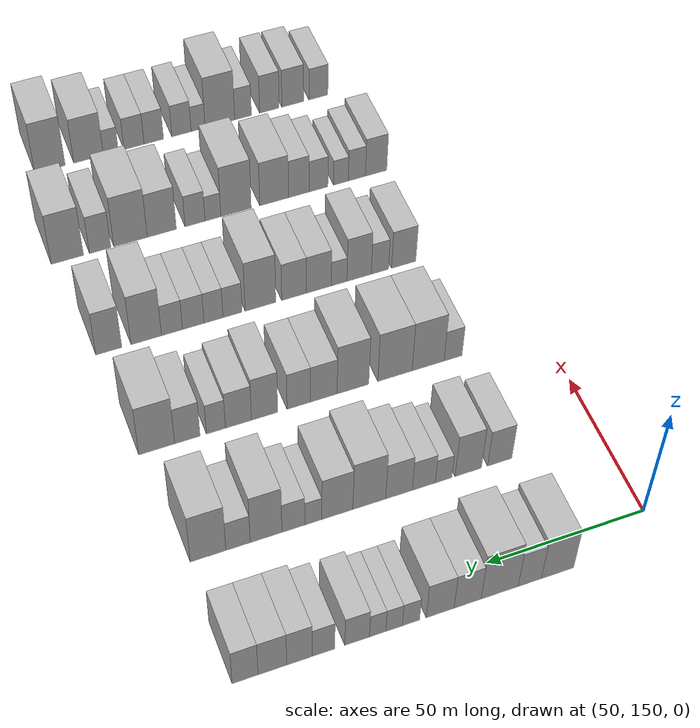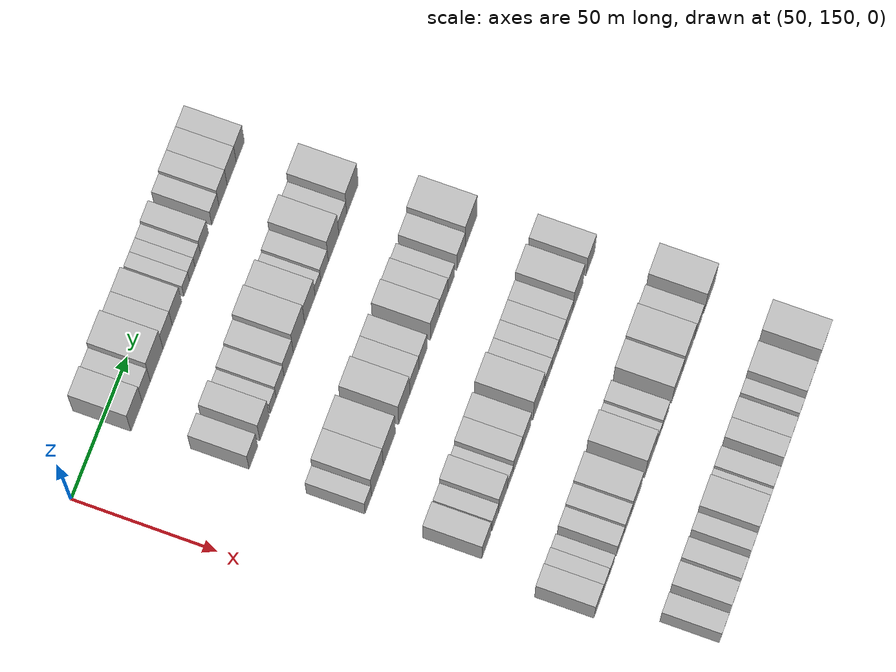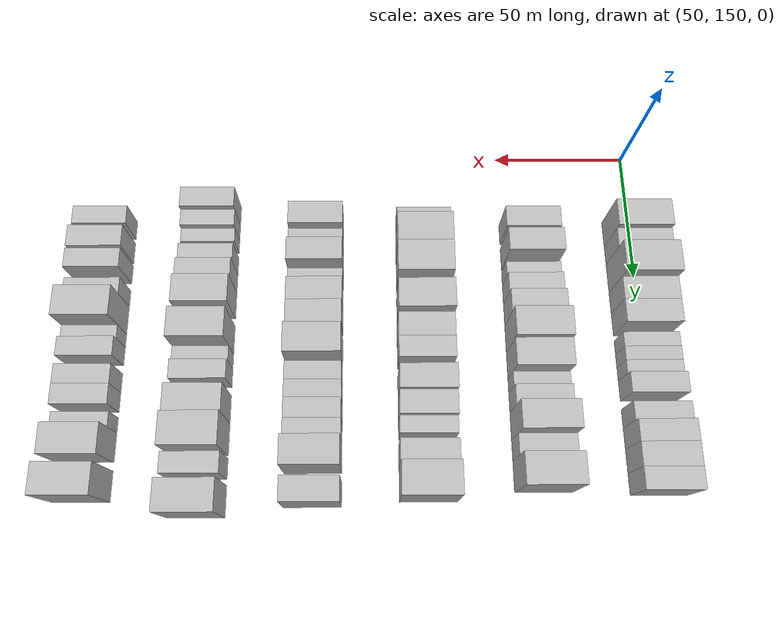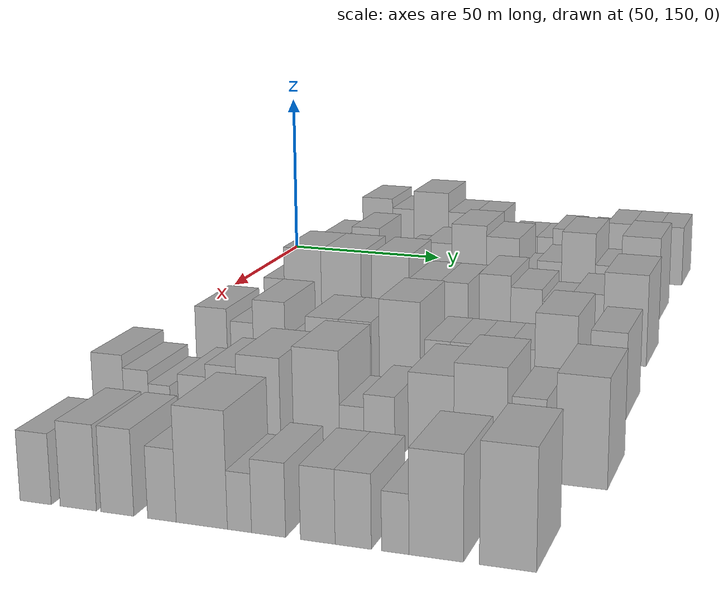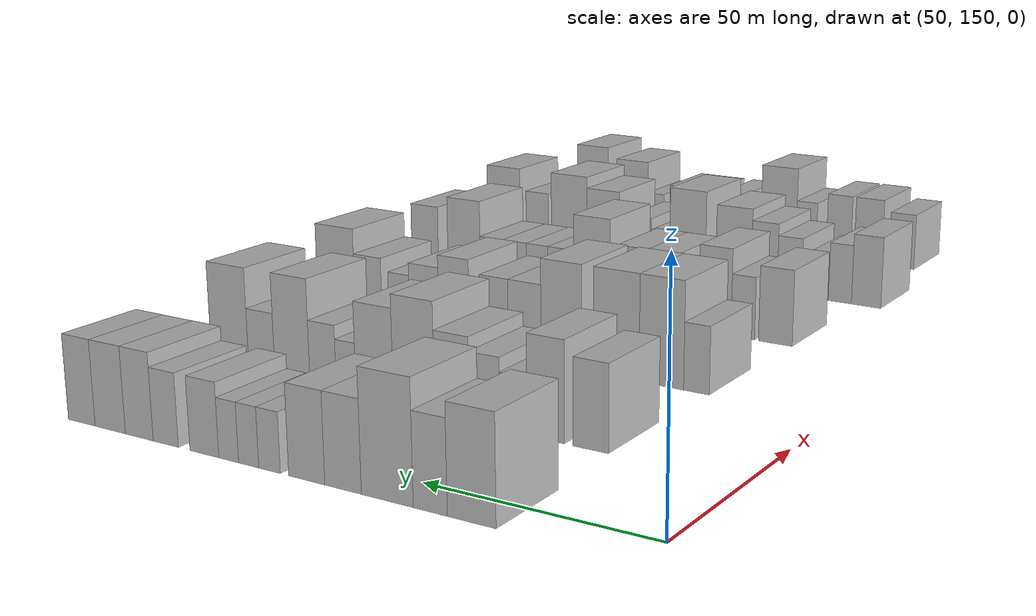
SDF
<sdf version="1.6">
 <world name="default">
  <model name="building_86">
   <static>1</static>
   <pose>50.0000 182.4433 0 0.000000 0.000000 0.000000</pose>
   <link name="link">
    <pose>0 0 10.50 0 0 0</pose>
    <collision name="collision"><geometry><box><size>20.0000 10.1318 21.0000</size></box></geometry></collision>
    <visual name="visual">
     <cast_shadows>0</cast_shadows>
     <geometry><box><size>20.0000 10.1318 21.0000</size></box></geometry>
     <material>
      <script>
       <uri>model://HANNAS_wall/materials/scripts</uri>
       <uri>model://HANNAS_wall/materials/textures</uri>
       <name>vrc/HANNAS_wall</name>
      </script>
     </material>
    </visual>
   </link>
  </model>
  <model name="building_87">
   <static>1</static>
   <pose>50.0000 191.1486 0 0.000000 0.000000 0.000000</pose>
   <link name="link">
    <pose>0 0 9.00 0 0 0</pose>
    <collision name="collision"><geometry><box><size>20.0000 7.2789 18.0000</size></box></geometry></collision>
    <visual name="visual">
     <cast_shadows>0</cast_shadows>
     <geometry><box><size>20.0000 7.2789 18.0000</size></box></geometry>
     <material>
      <script>
       <uri>model://HANNAS_wall/materials/scripts</uri>
       <uri>model://HANNAS_wall/materials/textures</uri>
       <name>vrc/HANNAS_wall</name>
      </script>
     </material>
    </visual>
   </link>
  </model>
  <model name="building_88">
   <static>1</static>
   <pose>50.0000 200.5249 0 0.000000 0.000000 0.000000</pose>
   <link name="link">
    <pose>0 0 12.00 0 0 0</pose>
    <collision name="collision"><geometry><box><size>20.0000 11.4737 24.0000</size></box></geometry></collision>
    <visual name="visual">
     <cast_shadows>0</cast_shadows>
     <geometry><box><size>20.0000 11.4737 24.0000</size></box></geometry>
     <material>
      <script>
       <uri>model://HANNAS_wall/materials/scripts</uri>
       <uri>model://HANNAS_wall/materials/textures</uri>
       <name>vrc/HANNAS_wall</name>
      </script>
     </material>
    </visual>
   </link>
  </model>
  <model name="building_89">
   <static>1</static>
   <pose>50.0000 210.4406 0 0.000000 0.000000 0.000000</pose>
   <link name="link">
    <pose>0 0 9.00 0 0 0</pose>
    <collision name="collision"><geometry><box><size>20.0000 8.3578 18.0000</size></box></geometry></collision>
    <visual name="visual">
     <cast_shadows>0</cast_shadows>
     <geometry><box><size>20.0000 8.3578 18.0000</size></box></geometry>
     <material>
      <script>
       <uri>model://HANNAS_wall/materials/scripts</uri>
       <uri>model://HANNAS_wall/materials/textures</uri>
       <name>vrc/HANNAS_wall</name>
      </script>
     </material>
    </visual>
   </link>
  </model>
  <model name="building_90">
   <static>1</static>
   <pose>50.0000 218.8700 0 0.000000 0.000000 0.000000</pose>
   <link name="link">
    <pose>0 0 9.00 0 0 0</pose>
    <collision name="collision"><geometry><box><size>20.0000 8.5010 18.0000</size></box></geometry></collision>
    <visual name="visual">
     <cast_shadows>0</cast_shadows>
     <geometry><box><size>20.0000 8.5010 18.0000</size></box></geometry>
     <material>
      <script>
       <uri>model://HANNAS_wall/materials/scripts</uri>
       <uri>model://HANNAS_wall/materials/textures</uri>
       <name>vrc/HANNAS_wall</name>
      </script>
     </material>
    </visual>
   </link>
  </model>
  <model name="building_91">
   <static>1</static>
   <pose>50.0000 227.7440 0 0.000000 0.000000 0.000000</pose>
   <link name="link">
    <pose>0 0 6.00 0 0 0</pose>
    <collision name="collision"><geometry><box><size>20.0000 5.2469 12.0000</size></box></geometry></collision>
    <visual name="visual">
     <cast_shadows>0</cast_shadows>
     <geometry><box><size>20.0000 5.2469 12.0000</size></box></geometry>
     <material>
      <script>
       <uri>model://HANNAS_wall/materials/scripts</uri>
       <uri>model://HANNAS_wall/materials/textures</uri>
       <name>vrc/HANNAS_wall</name>
      </script>
     </material>
    </visual>
   </link>
  </model>
  <model name="building_92">
   <static>1</static>
   <pose>50.0000 232.8507 0 0.000000 0.000000 0.000000</pose>
   <link name="link">
    <pose>0 0 6.00 0 0 0</pose>
    <collision name="collision"><geometry><box><size>20.0000 4.9665 12.0000</size></box></geometry></collision>
    <visual name="visual">
     <cast_shadows>0</cast_shadows>
     <geometry><box><size>20.0000 4.9665 12.0000</size></box></geometry>
     <material>
      <script>
       <uri>model://HANNAS_wall/materials/scripts</uri>
       <uri>model://HANNAS_wall/materials/textures</uri>
       <name>vrc/HANNAS_wall</name>
      </script>
     </material>
    </visual>
   </link>
  </model>
  <model name="building_93">
   <static>1</static>
   <pose>50.0000 237.8128 0 0.000000 0.000000 0.000000</pose>
   <link name="link">
    <pose>0 0 6.00 0 0 0</pose>
    <collision name="collision"><geometry><box><size>20.0000 4.9579 12.0000</size></box></geometry></collision>
    <visual name="visual">
     <cast_shadows>0</cast_shadows>
     <geometry><box><size>20.0000 4.9579 12.0000</size></box></geometry>
     <material>
      <script>
       <uri>model://HANNAS_wall/materials/scripts</uri>
       <uri>model://HANNAS_wall/materials/textures</uri>
       <name>vrc/HANNAS_wall</name>
      </script>
     </material>
    </visual>
   </link>
  </model>
  <model name="building_94">
   <static>1</static>
   <pose>50.0000 243.9733 0 0.000000 0.000000 0.000000</pose>
   <link name="link">
    <pose>0 0 7.50 0 0 0</pose>
    <collision name="collision"><geometry><box><size>20.0000 7.3631 15.0000</size></box></geometry></collision>
    <visual name="visual">
     <cast_shadows>0</cast_shadows>
     <geometry><box><size>20.0000 7.3631 15.0000</size></box></geometry>
     <material>
      <script>
       <uri>model://HANNAS_wall/materials/scripts</uri>
       <uri>model://HANNAS_wall/materials/textures</uri>
       <name>vrc/HANNAS_wall</name>
      </script>
     </material>
    </visual>
   </link>
  </model>
  <model name="building_95">
   <static>1</static>
   <pose>50.0000 253.9811 0 0.000000 0.000000 0.000000</pose>
   <link name="link">
    <pose>0 0 7.50 0 0 0</pose>
    <collision name="collision"><geometry><box><size>20.0000 6.6525 15.0000</size></box></geometry></collision>
    <visual name="visual">
     <cast_shadows>0</cast_shadows>
     <geometry><box><size>20.0000 6.6525 15.0000</size></box></geometry>
     <material>
      <script>
       <uri>model://HANNAS_wall/materials/scripts</uri>
       <uri>model://HANNAS_wall/materials/textures</uri>
       <name>vrc/HANNAS_wall</name>
      </script>
     </material>
    </visual>
   </link>
  </model>
  <model name="building_96">
   <static>1</static>
   <pose>50.0000 261.0674 0 0.000000 0.000000 0.000000</pose>
   <link name="link">
    <pose>0 0 9.00 0 0 0</pose>
    <collision name="collision"><geometry><box><size>20.0000 7.5202 18.0000</size></box></geometry></collision>
    <visual name="visual">
     <cast_shadows>0</cast_shadows>
     <geometry><box><size>20.0000 7.5202 18.0000</size></box></geometry>
     <material>
      <script>
       <uri>model://HANNAS_wall/materials/scripts</uri>
       <uri>model://HANNAS_wall/materials/textures</uri>
       <name>vrc/HANNAS_wall</name>
      </script>
     </material>
    </visual>
   </link>
  </model>
  <model name="building_97">
   <static>1</static>
   <pose>50.0000 269.0079 0 0.000000 0.000000 0.000000</pose>
   <link name="link">
    <pose>0 0 9.00 0 0 0</pose>
    <collision name="collision"><geometry><box><size>20.0000 8.3607 18.0000</size></box></geometry></collision>
    <visual name="visual">
     <cast_shadows>0</cast_shadows>
     <geometry><box><size>20.0000 8.3607 18.0000</size></box></geometry>
     <material>
      <script>
       <uri>model://HANNAS_wall/materials/scripts</uri>
       <uri>model://HANNAS_wall/materials/textures</uri>
       <name>vrc/HANNAS_wall</name>
      </script>
     </material>
    </visual>
   </link>
  </model>
  <model name="building_98">
   <static>1</static>
   <pose>50.0000 276.9610 0 0.000000 0.000000 0.000000</pose>
   <link name="link">
    <pose>0 0 9.00 0 0 0</pose>
    <collision name="collision"><geometry><box><size>20.0000 7.5457 18.0000</size></box></geometry></collision>
    <visual name="visual">
     <cast_shadows>0</cast_shadows>
     <geometry><box><size>20.0000 7.5457 18.0000</size></box></geometry>
     <material>
      <script>
       <uri>model://HANNAS_wall/materials/scripts</uri>
       <uri>model://HANNAS_wall/materials/textures</uri>
       <name>vrc/HANNAS_wall</name>
      </script>
     </material>
    </visual>
   </link>
  </model>
  <model name="building_223">
   <static>1</static>
   <pose>90.0000 182.5931 0 0.000000 0.000000 0.000000</pose>
   <link name="link">
    <pose>0 0 9.00 0 0 0</pose>
    <collision name="collision"><geometry><box><size>20.0000 7.8951 18.0000</size></box></geometry></collision>
    <visual name="visual">
     <cast_shadows>0</cast_shadows>
     <geometry><box><size>20.0000 7.8951 18.0000</size></box></geometry>
     <material>
      <script>
       <uri>model://HANNAS_wall/materials/scripts</uri>
       <uri>model://HANNAS_wall/materials/textures</uri>
       <name>vrc/HANNAS_wall</name>
      </script>
     </material>
    </visual>
   </link>
  </model>
  <model name="building_224">
   <static>1</static>
   <pose>90.0000 192.8180 0 0.000000 0.000000 0.000000</pose>
   <link name="link">
    <pose>0 0 10.50 0 0 0</pose>
    <collision name="collision"><geometry><box><size>20.0000 8.5547 21.0000</size></box></geometry></collision>
    <visual name="visual">
     <cast_shadows>0</cast_shadows>
     <geometry><box><size>20.0000 8.5547 21.0000</size></box></geometry>
     <material>
      <script>
       <uri>model://HANNAS_wall/materials/scripts</uri>
       <uri>model://HANNAS_wall/materials/textures</uri>
       <name>vrc/HANNAS_wall</name>
      </script>
     </material>
    </visual>
   </link>
  </model>
  <model name="building_225">
   <static>1</static>
   <pose>90.0000 200.7677 0 0.000000 0.000000 0.000000</pose>
   <link name="link">
    <pose>0 0 6.00 0 0 0</pose>
    <collision name="collision"><geometry><box><size>20.0000 5.3447 12.0000</size></box></geometry></collision>
    <visual name="visual">
     <cast_shadows>0</cast_shadows>
     <geometry><box><size>20.0000 5.3447 12.0000</size></box></geometry>
     <material>
      <script>
       <uri>model://HANNAS_wall/materials/scripts</uri>
       <uri>model://HANNAS_wall/materials/textures</uri>
       <name>vrc/HANNAS_wall</name>
      </script>
     </material>
    </visual>
   </link>
  </model>
  <model name="building_226">
   <static>1</static>
   <pose>90.0000 207.1180 0 0.000000 0.000000 0.000000</pose>
   <link name="link">
    <pose>0 0 7.50 0 0 0</pose>
    <collision name="collision"><geometry><box><size>20.0000 7.3559 15.0000</size></box></geometry></collision>
    <visual name="visual">
     <cast_shadows>0</cast_shadows>
     <geometry><box><size>20.0000 7.3559 15.0000</size></box></geometry>
     <material>
      <script>
       <uri>model://HANNAS_wall/materials/scripts</uri>
       <uri>model://HANNAS_wall/materials/textures</uri>
       <name>vrc/HANNAS_wall</name>
      </script>
     </material>
    </visual>
   </link>
  </model>
  <model name="building_227">
   <static>1</static>
   <pose>90.0000 215.0343 0 0.000000 0.000000 0.000000</pose>
   <link name="link">
    <pose>0 0 9.00 0 0 0</pose>
    <collision name="collision"><geometry><box><size>20.0000 8.4767 18.0000</size></box></geometry></collision>
    <visual name="visual">
     <cast_shadows>0</cast_shadows>
     <geometry><box><size>20.0000 8.4767 18.0000</size></box></geometry>
     <material>
      <script>
       <uri>model://HANNAS_wall/materials/scripts</uri>
       <uri>model://HANNAS_wall/materials/textures</uri>
       <name>vrc/HANNAS_wall</name>
      </script>
     </material>
    </visual>
   </link>
  </model>
  <model name="building_228">
   <static>1</static>
   <pose>90.0000 224.4790 0 0.000000 0.000000 0.000000</pose>
   <link name="link">
    <pose>0 0 12.00 0 0 0</pose>
    <collision name="collision"><geometry><box><size>20.0000 10.4127 24.0000</size></box></geometry></collision>
    <visual name="visual">
     <cast_shadows>0</cast_shadows>
     <geometry><box><size>20.0000 10.4127 24.0000</size></box></geometry>
     <material>
      <script>
       <uri>model://HANNAS_wall/materials/scripts</uri>
       <uri>model://HANNAS_wall/materials/textures</uri>
       <name>vrc/HANNAS_wall</name>
      </script>
     </material>
    </visual>
   </link>
  </model>
  <model name="building_229">
   <static>1</static>
   <pose>90.0000 234.5520 0 0.000000 0.000000 0.000000</pose>
   <link name="link">
    <pose>0 0 10.50 0 0 0</pose>
    <collision name="collision"><geometry><box><size>20.0000 9.7332 21.0000</size></box></geometry></collision>
    <visual name="visual">
     <cast_shadows>0</cast_shadows>
     <geometry><box><size>20.0000 9.7332 21.0000</size></box></geometry>
     <material>
      <script>
       <uri>model://HANNAS_wall/materials/scripts</uri>
       <uri>model://HANNAS_wall/materials/textures</uri>
       <name>vrc/HANNAS_wall</name>
      </script>
     </material>
    </visual>
   </link>
  </model>
  <model name="building_230">
   <static>1</static>
   <pose>90.0000 242.0365 0 0.000000 0.000000 0.000000</pose>
   <link name="link">
    <pose>0 0 6.00 0 0 0</pose>
    <collision name="collision"><geometry><box><size>20.0000 5.2359 12.0000</size></box></geometry></collision>
    <visual name="visual">
     <cast_shadows>0</cast_shadows>
     <geometry><box><size>20.0000 5.2359 12.0000</size></box></geometry>
     <material>
      <script>
       <uri>model://HANNAS_wall/materials/scripts</uri>
       <uri>model://HANNAS_wall/materials/textures</uri>
       <name>vrc/HANNAS_wall</name>
      </script>
     </material>
    </visual>
   </link>
  </model>
  <model name="building_231">
   <static>1</static>
   <pose>90.0000 248.2085 0 0.000000 0.000000 0.000000</pose>
   <link name="link">
    <pose>0 0 7.50 0 0 0</pose>
    <collision name="collision"><geometry><box><size>20.0000 7.1080 15.0000</size></box></geometry></collision>
    <visual name="visual">
     <cast_shadows>0</cast_shadows>
     <geometry><box><size>20.0000 7.1080 15.0000</size></box></geometry>
     <material>
      <script>
       <uri>model://HANNAS_wall/materials/scripts</uri>
       <uri>model://HANNAS_wall/materials/textures</uri>
       <name>vrc/HANNAS_wall</name>
      </script>
     </material>
    </visual>
   </link>
  </model>
  <model name="building_232">
   <static>1</static>
   <pose>90.0000 256.6211 0 0.000000 0.000000 0.000000</pose>
   <link name="link">
    <pose>0 0 12.00 0 0 0</pose>
    <collision name="collision"><geometry><box><size>20.0000 9.7174 24.0000</size></box></geometry></collision>
    <visual name="visual">
     <cast_shadows>0</cast_shadows>
     <geometry><box><size>20.0000 9.7174 24.0000</size></box></geometry>
     <material>
      <script>
       <uri>model://HANNAS_wall/materials/scripts</uri>
       <uri>model://HANNAS_wall/materials/textures</uri>
       <name>vrc/HANNAS_wall</name>
      </script>
     </material>
    </visual>
   </link>
  </model>
  <model name="building_233">
   <static>1</static>
   <pose>90.0000 265.1922 0 0.000000 0.000000 0.000000</pose>
   <link name="link">
    <pose>0 0 7.50 0 0 0</pose>
    <collision name="collision"><geometry><box><size>20.0000 7.4247 15.0000</size></box></geometry></collision>
    <visual name="visual">
     <cast_shadows>0</cast_shadows>
     <geometry><box><size>20.0000 7.4247 15.0000</size></box></geometry>
     <material>
      <script>
       <uri>model://HANNAS_wall/materials/scripts</uri>
       <uri>model://HANNAS_wall/materials/textures</uri>
       <name>vrc/HANNAS_wall</name>
      </script>
     </material>
    </visual>
   </link>
  </model>
  <model name="building_234">
   <static>1</static>
   <pose>90.0000 274.3124 0 0.000000 0.000000 0.000000</pose>
   <link name="link">
    <pose>0 0 12.00 0 0 0</pose>
    <collision name="collision"><geometry><box><size>20.0000 10.8158 24.0000</size></box></geometry></collision>
    <visual name="visual">
     <cast_shadows>0</cast_shadows>
     <geometry><box><size>20.0000 10.8158 24.0000</size></box></geometry>
     <material>
      <script>
       <uri>model://HANNAS_wall/materials/scripts</uri>
       <uri>model://HANNAS_wall/materials/textures</uri>
       <name>vrc/HANNAS_wall</name>
      </script>
     </material>
    </visual>
   </link>
  </model>
  <model name="building_361">
   <static>1</static>
   <pose>130.0000 180.5458 0 0.000000 0.000000 0.000000</pose>
   <link name="link">
    <pose>0 0 7.50 0 0 0</pose>
    <collision name="collision"><geometry><box><size>20.0000 6.0500 15.0000</size></box></geometry></collision>
    <visual name="visual">
     <cast_shadows>0</cast_shadows>
     <geometry><box><size>20.0000 6.0500 15.0000</size></box></geometry>
     <material>
      <script>
       <uri>model://HANNAS_wall/materials/scripts</uri>
       <uri>model://HANNAS_wall/materials/textures</uri>
       <name>vrc/HANNAS_wall</name>
      </script>
     </material>
    </visual>
   </link>
  </model>
  <model name="building_362">
   <static>1</static>
   <pose>130.0000 188.9560 0 0.000000 0.000000 0.000000</pose>
   <link name="link">
    <pose>0 0 12.00 0 0 0</pose>
    <collision name="collision"><geometry><box><size>20.0000 10.7705 24.0000</size></box></geometry></collision>
    <visual name="visual">
     <cast_shadows>0</cast_shadows>
     <geometry><box><size>20.0000 10.7705 24.0000</size></box></geometry>
     <material>
      <script>
       <uri>model://HANNAS_wall/materials/scripts</uri>
       <uri>model://HANNAS_wall/materials/textures</uri>
       <name>vrc/HANNAS_wall</name>
      </script>
     </material>
    </visual>
   </link>
  </model>
  <model name="building_363">
   <static>1</static>
   <pose>130.0000 200.0593 0 0.000000 0.000000 0.000000</pose>
   <link name="link">
    <pose>0 0 12.00 0 0 0</pose>
    <collision name="collision"><geometry><box><size>20.0000 11.4361 24.0000</size></box></geometry></collision>
    <visual name="visual">
     <cast_shadows>0</cast_shadows>
     <geometry><box><size>20.0000 11.4361 24.0000</size></box></geometry>
     <material>
      <script>
       <uri>model://HANNAS_wall/materials/scripts</uri>
       <uri>model://HANNAS_wall/materials/textures</uri>
       <name>vrc/HANNAS_wall</name>
      </script>
     </material>
    </visual>
   </link>
  </model>
  <model name="building_364">
   <static>1</static>
   <pose>130.0000 214.0159 0 0.000000 0.000000 0.000000</pose>
   <link name="link">
    <pose>0 0 12.00 0 0 0</pose>
    <collision name="collision"><geometry><box><size>20.0000 10.4771 24.0000</size></box></geometry></collision>
    <visual name="visual">
     <cast_shadows>0</cast_shadows>
     <geometry><box><size>20.0000 10.4771 24.0000</size></box></geometry>
     <material>
      <script>
       <uri>model://HANNAS_wall/materials/scripts</uri>
       <uri>model://HANNAS_wall/materials/textures</uri>
       <name>vrc/HANNAS_wall</name>
      </script>
     </material>
    </visual>
   </link>
  </model>
  <model name="building_365">
   <static>1</static>
   <pose>130.0000 223.5973 0 0.000000 0.000000 0.000000</pose>
   <link name="link">
    <pose>0 0 9.00 0 0 0</pose>
    <collision name="collision"><geometry><box><size>20.0000 8.6857 18.0000</size></box></geometry></collision>
    <visual name="visual">
     <cast_shadows>0</cast_shadows>
     <geometry><box><size>20.0000 8.6857 18.0000</size></box></geometry>
     <material>
      <script>
       <uri>model://HANNAS_wall/materials/scripts</uri>
       <uri>model://HANNAS_wall/materials/textures</uri>
       <name>vrc/HANNAS_wall</name>
      </script>
     </material>
    </visual>
   </link>
  </model>
  <model name="building_366">
   <static>1</static>
   <pose>130.0000 231.7675 0 0.000000 0.000000 0.000000</pose>
   <link name="link">
    <pose>0 0 9.00 0 0 0</pose>
    <collision name="collision"><geometry><box><size>20.0000 7.6547 18.0000</size></box></geometry></collision>
    <visual name="visual">
     <cast_shadows>0</cast_shadows>
     <geometry><box><size>20.0000 7.6547 18.0000</size></box></geometry>
     <material>
      <script>
       <uri>model://HANNAS_wall/materials/scripts</uri>
       <uri>model://HANNAS_wall/materials/textures</uri>
       <name>vrc/HANNAS_wall</name>
      </script>
     </material>
    </visual>
   </link>
  </model>
  <model name="building_367">
   <static>1</static>
   <pose>130.0000 242.8274 0 0.000000 0.000000 0.000000</pose>
   <link name="link">
    <pose>0 0 10.50 0 0 0</pose>
    <collision name="collision"><geometry><box><size>20.0000 8.4653 21.0000</size></box></geometry></collision>
    <visual name="visual">
     <cast_shadows>0</cast_shadows>
     <geometry><box><size>20.0000 8.4653 21.0000</size></box></geometry>
     <material>
      <script>
       <uri>model://HANNAS_wall/materials/scripts</uri>
       <uri>model://HANNAS_wall/materials/textures</uri>
       <name>vrc/HANNAS_wall</name>
      </script>
     </material>
    </visual>
   </link>
  </model>
  <model name="building_368">
   <static>1</static>
   <pose>130.0000 251.2444 0 0.000000 0.000000 0.000000</pose>
   <link name="link">
    <pose>0 0 9.00 0 0 0</pose>
    <collision name="collision"><geometry><box><size>20.0000 8.3687 18.0000</size></box></geometry></collision>
    <visual name="visual">
     <cast_shadows>0</cast_shadows>
     <geometry><box><size>20.0000 8.3687 18.0000</size></box></geometry>
     <material>
      <script>
       <uri>model://HANNAS_wall/materials/scripts</uri>
       <uri>model://HANNAS_wall/materials/textures</uri>
       <name>vrc/HANNAS_wall</name>
      </script>
     </material>
    </visual>
   </link>
  </model>
  <model name="building_369">
   <static>1</static>
   <pose>130.0000 258.4541 0 0.000000 0.000000 0.000000</pose>
   <link name="link">
    <pose>0 0 7.50 0 0 0</pose>
    <collision name="collision"><geometry><box><size>20.0000 6.0506 15.0000</size></box></geometry></collision>
    <visual name="visual">
     <cast_shadows>0</cast_shadows>
     <geometry><box><size>20.0000 6.0506 15.0000</size></box></geometry>
     <material>
      <script>
       <uri>model://HANNAS_wall/materials/scripts</uri>
       <uri>model://HANNAS_wall/materials/textures</uri>
       <name>vrc/HANNAS_wall</name>
      </script>
     </material>
    </visual>
   </link>
  </model>
  <model name="building_370">
   <static>1</static>
   <pose>130.0000 267.5005 0 0.000000 0.000000 0.000000</pose>
   <link name="link">
    <pose>0 0 9.00 0 0 0</pose>
    <collision name="collision"><geometry><box><size>20.0000 8.0422 18.0000</size></box></geometry></collision>
    <visual name="visual">
     <cast_shadows>0</cast_shadows>
     <geometry><box><size>20.0000 8.0422 18.0000</size></box></geometry>
     <material>
      <script>
       <uri>model://HANNAS_wall/materials/scripts</uri>
       <uri>model://HANNAS_wall/materials/textures</uri>
       <name>vrc/HANNAS_wall</name>
      </script>
     </material>
    </visual>
   </link>
  </model>
  <model name="building_371">
   <static>1</static>
   <pose>130.0000 277.1722 0 0.000000 0.000000 0.000000</pose>
   <link name="link">
    <pose>0 0 12.00 0 0 0</pose>
    <collision name="collision"><geometry><box><size>20.0000 11.3013 24.0000</size></box></geometry></collision>
    <visual name="visual">
     <cast_shadows>0</cast_shadows>
     <geometry><box><size>20.0000 11.3013 24.0000</size></box></geometry>
     <material>
      <script>
       <uri>model://HANNAS_wall/materials/scripts</uri>
       <uri>model://HANNAS_wall/materials/textures</uri>
       <name>vrc/HANNAS_wall</name>
      </script>
     </material>
    </visual>
   </link>
  </model>
  <model name="building_491">
   <static>1</static>
   <pose>170.0000 180.7721 0 0.000000 0.000000 0.000000</pose>
   <link name="link">
    <pose>0 0 9.00 0 0 0</pose>
    <collision name="collision"><geometry><box><size>20.0000 8.5006 18.0000</size></box></geometry></collision>
    <visual name="visual">
     <cast_shadows>0</cast_shadows>
     <geometry><box><size>20.0000 8.5006 18.0000</size></box></geometry>
     <material>
      <script>
       <uri>model://HANNAS_wall/materials/scripts</uri>
       <uri>model://HANNAS_wall/materials/textures</uri>
       <name>vrc/HANNAS_wall</name>
      </script>
     </material>
    </visual>
   </link>
  </model>
  <model name="building_492">
   <static>1</static>
   <pose>170.0000 189.0486 0 0.000000 0.000000 0.000000</pose>
   <link name="link">
    <pose>0 0 7.50 0 0 0</pose>
    <collision name="collision"><geometry><box><size>20.0000 6.0523 15.0000</size></box></geometry></collision>
    <visual name="visual">
     <cast_shadows>0</cast_shadows>
     <geometry><box><size>20.0000 6.0523 15.0000</size></box></geometry>
     <material>
      <script>
       <uri>model://HANNAS_wall/materials/scripts</uri>
       <uri>model://HANNAS_wall/materials/textures</uri>
       <name>vrc/HANNAS_wall</name>
      </script>
     </material>
    </visual>
   </link>
  </model>
  <model name="building_493">
   <static>1</static>
   <pose>170.0000 196.3042 0 0.000000 0.000000 0.000000</pose>
   <link name="link">
    <pose>0 0 10.50 0 0 0</pose>
    <collision name="collision"><geometry><box><size>20.0000 8.4591 21.0000</size></box></geometry></collision>
    <visual name="visual">
     <cast_shadows>0</cast_shadows>
     <geometry><box><size>20.0000 8.4591 21.0000</size></box></geometry>
     <material>
      <script>
       <uri>model://HANNAS_wall/materials/scripts</uri>
       <uri>model://HANNAS_wall/materials/textures</uri>
       <name>vrc/HANNAS_wall</name>
      </script>
     </material>
    </visual>
   </link>
  </model>
  <model name="building_494">
   <static>1</static>
   <pose>170.0000 203.2286 0 0.000000 0.000000 0.000000</pose>
   <link name="link">
    <pose>0 0 6.00 0 0 0</pose>
    <collision name="collision"><geometry><box><size>20.0000 5.3897 12.0000</size></box></geometry></collision>
    <visual name="visual">
     <cast_shadows>0</cast_shadows>
     <geometry><box><size>20.0000 5.3897 12.0000</size></box></geometry>
     <material>
      <script>
       <uri>model://HANNAS_wall/materials/scripts</uri>
       <uri>model://HANNAS_wall/materials/textures</uri>
       <name>vrc/HANNAS_wall</name>
      </script>
     </material>
    </visual>
   </link>
  </model>
  <model name="building_495">
   <static>1</static>
   <pose>170.0000 210.1768 0 0.000000 0.000000 0.000000</pose>
   <link name="link">
    <pose>0 0 9.00 0 0 0</pose>
    <collision name="collision"><geometry><box><size>20.0000 8.5066 18.0000</size></box></geometry></collision>
    <visual name="visual">
     <cast_shadows>0</cast_shadows>
     <geometry><box><size>20.0000 8.5066 18.0000</size></box></geometry>
     <material>
      <script>
       <uri>model://HANNAS_wall/materials/scripts</uri>
       <uri>model://HANNAS_wall/materials/textures</uri>
       <name>vrc/HANNAS_wall</name>
      </script>
     </material>
    </visual>
   </link>
  </model>
  <model name="building_496">
   <static>1</static>
   <pose>170.0000 218.6383 0 0.000000 0.000000 0.000000</pose>
   <link name="link">
    <pose>0 0 9.00 0 0 0</pose>
    <collision name="collision"><geometry><box><size>20.0000 8.4164 18.0000</size></box></geometry></collision>
    <visual name="visual">
     <cast_shadows>0</cast_shadows>
     <geometry><box><size>20.0000 8.4164 18.0000</size></box></geometry>
     <material>
      <script>
       <uri>model://HANNAS_wall/materials/scripts</uri>
       <uri>model://HANNAS_wall/materials/textures</uri>
       <name>vrc/HANNAS_wall</name>
      </script>
     </material>
    </visual>
   </link>
  </model>
  <model name="building_497">
   <static>1</static>
   <pose>170.0000 230.0169 0 0.000000 0.000000 0.000000</pose>
   <link name="link">
    <pose>0 0 12.00 0 0 0</pose>
    <collision name="collision"><geometry><box><size>20.0000 10.3408 24.0000</size></box></geometry></collision>
    <visual name="visual">
     <cast_shadows>0</cast_shadows>
     <geometry><box><size>20.0000 10.3408 24.0000</size></box></geometry>
     <material>
      <script>
       <uri>model://HANNAS_wall/materials/scripts</uri>
       <uri>model://HANNAS_wall/materials/textures</uri>
       <name>vrc/HANNAS_wall</name>
      </script>
     </material>
    </visual>
   </link>
  </model>
  <model name="building_498">
   <static>1</static>
   <pose>170.0000 239.4017 0 0.000000 0.000000 0.000000</pose>
   <link name="link">
    <pose>0 0 7.50 0 0 0</pose>
    <collision name="collision"><geometry><box><size>20.0000 6.4287 15.0000</size></box></geometry></collision>
    <visual name="visual">
     <cast_shadows>0</cast_shadows>
     <geometry><box><size>20.0000 6.4287 15.0000</size></box></geometry>
     <material>
      <script>
       <uri>model://HANNAS_wall/materials/scripts</uri>
       <uri>model://HANNAS_wall/materials/textures</uri>
       <name>vrc/HANNAS_wall</name>
      </script>
     </material>
    </visual>
   </link>
  </model>
  <model name="building_499">
   <static>1</static>
   <pose>170.0000 245.7872 0 0.000000 0.000000 0.000000</pose>
   <link name="link">
    <pose>0 0 7.50 0 0 0</pose>
    <collision name="collision"><geometry><box><size>20.0000 6.3423 15.0000</size></box></geometry></collision>
    <visual name="visual">
     <cast_shadows>0</cast_shadows>
     <geometry><box><size>20.0000 6.3423 15.0000</size></box></geometry>
     <material>
      <script>
       <uri>model://HANNAS_wall/materials/scripts</uri>
       <uri>model://HANNAS_wall/materials/textures</uri>
       <name>vrc/HANNAS_wall</name>
      </script>
     </material>
    </visual>
   </link>
  </model>
  <model name="building_500">
   <static>1</static>
   <pose>170.0000 252.5192 0 0.000000 0.000000 0.000000</pose>
   <link name="link">
    <pose>0 0 7.50 0 0 0</pose>
    <collision name="collision"><geometry><box><size>20.0000 7.1216 15.0000</size></box></geometry></collision>
    <visual name="visual">
     <cast_shadows>0</cast_shadows>
     <geometry><box><size>20.0000 7.1216 15.0000</size></box></geometry>
     <material>
      <script>
       <uri>model://HANNAS_wall/materials/scripts</uri>
       <uri>model://HANNAS_wall/materials/textures</uri>
       <name>vrc/HANNAS_wall</name>
      </script>
     </material>
    </visual>
   </link>
  </model>
  <model name="building_501">
   <static>1</static>
   <pose>170.0000 259.5421 0 0.000000 0.000000 0.000000</pose>
   <link name="link">
    <pose>0 0 7.50 0 0 0</pose>
    <collision name="collision"><geometry><box><size>20.0000 6.9242 15.0000</size></box></geometry></collision>
    <visual name="visual">
     <cast_shadows>0</cast_shadows>
     <geometry><box><size>20.0000 6.9242 15.0000</size></box></geometry>
     <material>
      <script>
       <uri>model://HANNAS_wall/materials/scripts</uri>
       <uri>model://HANNAS_wall/materials/textures</uri>
       <name>vrc/HANNAS_wall</name>
      </script>
     </material>
    </visual>
   </link>
  </model>
  <model name="building_502">
   <static>1</static>
   <pose>170.0000 268.0211 0 0.000000 0.000000 0.000000</pose>
   <link name="link">
    <pose>0 0 12.00 0 0 0</pose>
    <collision name="collision"><geometry><box><size>20.0000 10.0337 24.0000</size></box></geometry></collision>
    <visual name="visual">
     <cast_shadows>0</cast_shadows>
     <geometry><box><size>20.0000 10.0337 24.0000</size></box></geometry>
     <material>
      <script>
       <uri>model://HANNAS_wall/materials/scripts</uri>
       <uri>model://HANNAS_wall/materials/textures</uri>
       <name>vrc/HANNAS_wall</name>
      </script>
     </material>
    </visual>
   </link>
  </model>
  <model name="building_503">
   <static>1</static>
   <pose>170.0000 280.2786 0 0.000000 0.000000 0.000000</pose>
   <link name="link">
    <pose>0 0 10.50 0 0 0</pose>
    <collision name="collision"><geometry><box><size>20.0000 8.4814 21.0000</size></box></geometry></collision>
    <visual name="visual">
     <cast_shadows>0</cast_shadows>
     <geometry><box><size>20.0000 8.4814 21.0000</size></box></geometry>
     <material>
      <script>
       <uri>model://HANNAS_wall/materials/scripts</uri>
       <uri>model://HANNAS_wall/materials/textures</uri>
       <name>vrc/HANNAS_wall</name>
      </script>
     </material>
    </visual>
   </link>
  </model>
  <model name="building_636">
   <static>1</static>
   <pose>210.0000 174.4334 0 0.000000 0.000000 0.000000</pose>
   <link name="link">
    <pose>0 0 9.00 0 0 0</pose>
    <collision name="collision"><geometry><box><size>20.0000 7.7478 18.0000</size></box></geometry></collision>
    <visual name="visual">
     <cast_shadows>0</cast_shadows>
     <geometry><box><size>20.0000 7.7478 18.0000</size></box></geometry>
     <material>
      <script>
       <uri>model://HANNAS_wall/materials/scripts</uri>
       <uri>model://HANNAS_wall/materials/textures</uri>
       <name>vrc/HANNAS_wall</name>
      </script>
     </material>
    </visual>
   </link>
  </model>
  <model name="building_637">
   <static>1</static>
   <pose>210.0000 181.4112 0 0.000000 0.000000 0.000000</pose>
   <link name="link">
    <pose>0 0 7.50 0 0 0</pose>
    <collision name="collision"><geometry><box><size>20.0000 6.2078 15.0000</size></box></geometry></collision>
    <visual name="visual">
     <cast_shadows>0</cast_shadows>
     <geometry><box><size>20.0000 6.2078 15.0000</size></box></geometry>
     <material>
      <script>
       <uri>model://HANNAS_wall/materials/scripts</uri>
       <uri>model://HANNAS_wall/materials/textures</uri>
       <name>vrc/HANNAS_wall</name>
      </script>
     </material>
    </visual>
   </link>
  </model>
  <model name="building_638">
   <static>1</static>
   <pose>210.0000 187.1790 0 0.000000 0.000000 0.000000</pose>
   <link name="link">
    <pose>0 0 6.00 0 0 0</pose>
    <collision name="collision"><geometry><box><size>20.0000 5.3277 12.0000</size></box></geometry></collision>
    <visual name="visual">
     <cast_shadows>0</cast_shadows>
     <geometry><box><size>20.0000 5.3277 12.0000</size></box></geometry>
     <material>
      <script>
       <uri>model://HANNAS_wall/materials/scripts</uri>
       <uri>model://HANNAS_wall/materials/textures</uri>
       <name>vrc/HANNAS_wall</name>
      </script>
     </material>
    </visual>
   </link>
  </model>
  <model name="building_639">
   <static>1</static>
   <pose>210.0000 195.2222 0 0.000000 0.000000 0.000000</pose>
   <link name="link">
    <pose>0 0 7.50 0 0 0</pose>
    <collision name="collision"><geometry><box><size>20.0000 6.7588 15.0000</size></box></geometry></collision>
    <visual name="visual">
     <cast_shadows>0</cast_shadows>
     <geometry><box><size>20.0000 6.7588 15.0000</size></box></geometry>
     <material>
      <script>
       <uri>model://HANNAS_wall/materials/scripts</uri>
       <uri>model://HANNAS_wall/materials/textures</uri>
       <name>vrc/HANNAS_wall</name>
      </script>
     </material>
    </visual>
   </link>
  </model>
  <model name="building_640">
   <static>1</static>
   <pose>210.0000 202.2659 0 0.000000 0.000000 0.000000</pose>
   <link name="link">
    <pose>0 0 9.00 0 0 0</pose>
    <collision name="collision"><geometry><box><size>20.0000 7.3285 18.0000</size></box></geometry></collision>
    <visual name="visual">
     <cast_shadows>0</cast_shadows>
     <geometry><box><size>20.0000 7.3285 18.0000</size></box></geometry>
     <material>
      <script>
       <uri>model://HANNAS_wall/materials/scripts</uri>
       <uri>model://HANNAS_wall/materials/textures</uri>
       <name>vrc/HANNAS_wall</name>
      </script>
     </material>
    </visual>
   </link>
  </model>
  <model name="building_641">
   <static>1</static>
   <pose>210.0000 211.0268 0 0.000000 0.000000 0.000000</pose>
   <link name="link">
    <pose>0 0 10.50 0 0 0</pose>
    <collision name="collision"><geometry><box><size>20.0000 10.1931 21.0000</size></box></geometry></collision>
    <visual name="visual">
     <cast_shadows>0</cast_shadows>
     <geometry><box><size>20.0000 10.1931 21.0000</size></box></geometry>
     <material>
      <script>
       <uri>model://HANNAS_wall/materials/scripts</uri>
       <uri>model://HANNAS_wall/materials/textures</uri>
       <name>vrc/HANNAS_wall</name>
      </script>
     </material>
    </visual>
   </link>
  </model>
  <model name="building_642">
   <static>1</static>
   <pose>210.0000 224.4507 0 0.000000 0.000000 0.000000</pose>
   <link name="link">
    <pose>0 0 12.00 0 0 0</pose>
    <collision name="collision"><geometry><box><size>20.0000 10.6549 24.0000</size></box></geometry></collision>
    <visual name="visual">
     <cast_shadows>0</cast_shadows>
     <geometry><box><size>20.0000 10.6549 24.0000</size></box></geometry>
     <material>
      <script>
       <uri>model://HANNAS_wall/materials/scripts</uri>
       <uri>model://HANNAS_wall/materials/textures</uri>
       <name>vrc/HANNAS_wall</name>
      </script>
     </material>
    </visual>
   </link>
  </model>
  <model name="building_643">
   <static>1</static>
   <pose>210.0000 232.5487 0 0.000000 0.000000 0.000000</pose>
   <link name="link">
    <pose>0 0 6.00 0 0 0</pose>
    <collision name="collision"><geometry><box><size>20.0000 5.5411 12.0000</size></box></geometry></collision>
    <visual name="visual">
     <cast_shadows>0</cast_shadows>
     <geometry><box><size>20.0000 5.5411 12.0000</size></box></geometry>
     <material>
      <script>
       <uri>model://HANNAS_wall/materials/scripts</uri>
       <uri>model://HANNAS_wall/materials/textures</uri>
       <name>vrc/HANNAS_wall</name>
      </script>
     </material>
    </visual>
   </link>
  </model>
  <model name="building_644">
   <static>1</static>
   <pose>210.0000 238.7893 0 0.000000 0.000000 0.000000</pose>
   <link name="link">
    <pose>0 0 7.50 0 0 0</pose>
    <collision name="collision"><geometry><box><size>20.0000 6.9400 15.0000</size></box></geometry></collision>
    <visual name="visual">
     <cast_shadows>0</cast_shadows>
     <geometry><box><size>20.0000 6.9400 15.0000</size></box></geometry>
     <material>
      <script>
       <uri>model://HANNAS_wall/materials/scripts</uri>
       <uri>model://HANNAS_wall/materials/textures</uri>
       <name>vrc/HANNAS_wall</name>
      </script>
     </material>
    </visual>
   </link>
  </model>
  <model name="building_645">
   <static>1</static>
   <pose>210.0000 250.2581 0 0.000000 0.000000 0.000000</pose>
   <link name="link">
    <pose>0 0 10.50 0 0 0</pose>
    <collision name="collision"><geometry><box><size>20.0000 9.9977 21.0000</size></box></geometry></collision>
    <visual name="visual">
     <cast_shadows>0</cast_shadows>
     <geometry><box><size>20.0000 9.9977 21.0000</size></box></geometry>
     <material>
      <script>
       <uri>model://HANNAS_wall/materials/scripts</uri>
       <uri>model://HANNAS_wall/materials/textures</uri>
       <name>vrc/HANNAS_wall</name>
      </script>
     </material>
    </visual>
   </link>
  </model>
  <model name="building_646">
   <static>1</static>
   <pose>210.0000 260.9840 0 0.000000 0.000000 0.000000</pose>
   <link name="link">
    <pose>0 0 12.00 0 0 0</pose>
    <collision name="collision"><geometry><box><size>20.0000 11.4540 24.0000</size></box></geometry></collision>
    <visual name="visual">
     <cast_shadows>0</cast_shadows>
     <geometry><box><size>20.0000 11.4540 24.0000</size></box></geometry>
     <material>
      <script>
       <uri>model://HANNAS_wall/materials/scripts</uri>
       <uri>model://HANNAS_wall/materials/textures</uri>
       <name>vrc/HANNAS_wall</name>
      </script>
     </material>
    </visual>
   </link>
  </model>
  <model name="building_647">
   <static>1</static>
   <pose>210.0000 271.3498 0 0.000000 0.000000 0.000000</pose>
   <link name="link">
    <pose>0 0 9.00 0 0 0</pose>
    <collision name="collision"><geometry><box><size>20.0000 7.2776 18.0000</size></box></geometry></collision>
    <visual name="visual">
     <cast_shadows>0</cast_shadows>
     <geometry><box><size>20.0000 7.2776 18.0000</size></box></geometry>
     <material>
      <script>
       <uri>model://HANNAS_wall/materials/scripts</uri>
       <uri>model://HANNAS_wall/materials/textures</uri>
       <name>vrc/HANNAS_wall</name>
      </script>
     </material>
    </visual>
   </link>
  </model>
  <model name="building_648">
   <static>1</static>
   <pose>210.0000 282.4327 0 0.000000 0.000000 0.000000</pose>
   <link name="link">
    <pose>0 0 12.00 0 0 0</pose>
    <collision name="collision"><geometry><box><size>20.0000 10.8883 24.0000</size></box></geometry></collision>
    <visual name="visual">
     <cast_shadows>0</cast_shadows>
     <geometry><box><size>20.0000 10.8883 24.0000</size></box></geometry>
     <material>
      <script>
       <uri>model://HANNAS_wall/materials/scripts</uri>
       <uri>model://HANNAS_wall/materials/textures</uri>
       <name>vrc/HANNAS_wall</name>
      </script>
     </material>
    </visual>
   </link>
  </model>
  <model name="building_772">
   <static>1</static>
   <pose>250.0000 180.1993 0 0.000000 0.000000 0.000000</pose>
   <link name="link">
    <pose>0 0 7.50 0 0 0</pose>
    <collision name="collision"><geometry><box><size>20.0000 7.0849 15.0000</size></box></geometry></collision>
    <visual name="visual">
     <cast_shadows>0</cast_shadows>
     <geometry><box><size>20.0000 7.0849 15.0000</size></box></geometry>
     <material>
      <script>
       <uri>model://HANNAS_wall/materials/scripts</uri>
       <uri>model://HANNAS_wall/materials/textures</uri>
       <name>vrc/HANNAS_wall</name>
      </script>
     </material>
    </visual>
   </link>
  </model>
  <model name="building_773">
   <static>1</static>
   <pose>250.0000 189.7845 0 0.000000 0.000000 0.000000</pose>
   <link name="link">
    <pose>0 0 9.00 0 0 0</pose>
    <collision name="collision"><geometry><box><size>20.0000 8.0856 18.0000</size></box></geometry></collision>
    <visual name="visual">
     <cast_shadows>0</cast_shadows>
     <geometry><box><size>20.0000 8.0856 18.0000</size></box></geometry>
     <material>
      <script>
       <uri>model://HANNAS_wall/materials/scripts</uri>
       <uri>model://HANNAS_wall/materials/textures</uri>
       <name>vrc/HANNAS_wall</name>
      </script>
     </material>
    </visual>
   </link>
  </model>
  <model name="building_774">
   <static>1</static>
   <pose>250.0000 198.4305 0 0.000000 0.000000 0.000000</pose>
   <link name="link">
    <pose>0 0 9.00 0 0 0</pose>
    <collision name="collision"><geometry><box><size>20.0000 7.2065 18.0000</size></box></geometry></collision>
    <visual name="visual">
     <cast_shadows>0</cast_shadows>
     <geometry><box><size>20.0000 7.2065 18.0000</size></box></geometry>
     <material>
      <script>
       <uri>model://HANNAS_wall/materials/scripts</uri>
       <uri>model://HANNAS_wall/materials/textures</uri>
       <name>vrc/HANNAS_wall</name>
      </script>
     </material>
    </visual>
   </link>
  </model>
  <model name="building_775">
   <static>1</static>
   <pose>250.0000 208.0999 0 0.000000 0.000000 0.000000</pose>
   <link name="link">
    <pose>0 0 7.50 0 0 0</pose>
    <collision name="collision"><geometry><box><size>20.0000 6.1324 15.0000</size></box></geometry></collision>
    <visual name="visual">
     <cast_shadows>0</cast_shadows>
     <geometry><box><size>20.0000 6.1324 15.0000</size></box></geometry>
     <material>
      <script>
       <uri>model://HANNAS_wall/materials/scripts</uri>
       <uri>model://HANNAS_wall/materials/textures</uri>
       <name>vrc/HANNAS_wall</name>
      </script>
     </material>
    </visual>
   </link>
  </model>
  <model name="building_776">
   <static>1</static>
   <pose>250.0000 216.5790 0 0.000000 0.000000 0.000000</pose>
   <link name="link">
    <pose>0 0 12.00 0 0 0</pose>
    <collision name="collision"><geometry><box><size>20.0000 10.8257 24.0000</size></box></geometry></collision>
    <visual name="visual">
     <cast_shadows>0</cast_shadows>
     <geometry><box><size>20.0000 10.8257 24.0000</size></box></geometry>
     <material>
      <script>
       <uri>model://HANNAS_wall/materials/scripts</uri>
       <uri>model://HANNAS_wall/materials/textures</uri>
       <name>vrc/HANNAS_wall</name>
      </script>
     </material>
    </visual>
   </link>
  </model>
  <model name="building_777">
   <static>1</static>
   <pose>250.0000 224.5012 0 0.000000 0.000000 0.000000</pose>
   <link name="link">
    <pose>0 0 6.00 0 0 0</pose>
    <collision name="collision"><geometry><box><size>20.0000 5.0187 12.0000</size></box></geometry></collision>
    <visual name="visual">
     <cast_shadows>0</cast_shadows>
     <geometry><box><size>20.0000 5.0187 12.0000</size></box></geometry>
     <material>
      <script>
       <uri>model://HANNAS_wall/materials/scripts</uri>
       <uri>model://HANNAS_wall/materials/textures</uri>
       <name>vrc/HANNAS_wall</name>
      </script>
     </material>
    </visual>
   </link>
  </model>
  <model name="building_778">
   <static>1</static>
   <pose>250.0000 230.5084 0 0.000000 0.000000 0.000000</pose>
   <link name="link">
    <pose>0 0 7.50 0 0 0</pose>
    <collision name="collision"><geometry><box><size>20.0000 6.9959 15.0000</size></box></geometry></collision>
    <visual name="visual">
     <cast_shadows>0</cast_shadows>
     <geometry><box><size>20.0000 6.9959 15.0000</size></box></geometry>
     <material>
      <script>
       <uri>model://HANNAS_wall/materials/scripts</uri>
       <uri>model://HANNAS_wall/materials/textures</uri>
       <name>vrc/HANNAS_wall</name>
      </script>
     </material>
    </visual>
   </link>
  </model>
  <model name="building_779">
   <static>1</static>
   <pose>250.0000 240.4947 0 0.000000 0.000000 0.000000</pose>
   <link name="link">
    <pose>0 0 7.50 0 0 0</pose>
    <collision name="collision"><geometry><box><size>20.0000 6.9767 15.0000</size></box></geometry></collision>
    <visual name="visual">
     <cast_shadows>0</cast_shadows>
     <geometry><box><size>20.0000 6.9767 15.0000</size></box></geometry>
     <material>
      <script>
       <uri>model://HANNAS_wall/materials/scripts</uri>
       <uri>model://HANNAS_wall/materials/textures</uri>
       <name>vrc/HANNAS_wall</name>
      </script>
     </material>
    </visual>
   </link>
  </model>
  <model name="building_780">
   <static>1</static>
   <pose>250.0000 247.5732 0 0.000000 0.000000 0.000000</pose>
   <link name="link">
    <pose>0 0 7.50 0 0 0</pose>
    <collision name="collision"><geometry><box><size>20.0000 7.1801 15.0000</size></box></geometry></collision>
    <visual name="visual">
     <cast_shadows>0</cast_shadows>
     <geometry><box><size>20.0000 7.1801 15.0000</size></box></geometry>
     <material>
      <script>
       <uri>model://HANNAS_wall/materials/scripts</uri>
       <uri>model://HANNAS_wall/materials/textures</uri>
       <name>vrc/HANNAS_wall</name>
      </script>
     </material>
    </visual>
   </link>
  </model>
  <model name="building_781">
   <static>1</static>
   <pose>250.0000 255.8194 0 0.000000 0.000000 0.000000</pose>
   <link name="link">
    <pose>0 0 6.00 0 0 0</pose>
    <collision name="collision"><geometry><box><size>20.0000 5.3124 12.0000</size></box></geometry></collision>
    <visual name="visual">
     <cast_shadows>0</cast_shadows>
     <geometry><box><size>20.0000 5.3124 12.0000</size></box></geometry>
     <material>
      <script>
       <uri>model://HANNAS_wall/materials/scripts</uri>
       <uri>model://HANNAS_wall/materials/textures</uri>
       <name>vrc/HANNAS_wall</name>
      </script>
     </material>
    </visual>
   </link>
  </model>
  <model name="building_782">
   <static>1</static>
   <pose>250.0000 263.7037 0 0.000000 0.000000 0.000000</pose>
   <link name="link">
    <pose>0 0 10.50 0 0 0</pose>
    <collision name="collision"><geometry><box><size>20.0000 10.4561 21.0000</size></box></geometry></collision>
    <visual name="visual">
     <cast_shadows>0</cast_shadows>
     <geometry><box><size>20.0000 10.4561 21.0000</size></box></geometry>
     <material>
      <script>
       <uri>model://HANNAS_wall/materials/scripts</uri>
       <uri>model://HANNAS_wall/materials/textures</uri>
       <name>vrc/HANNAS_wall</name>
      </script>
     </material>
    </visual>
   </link>
  </model>
  <model name="building_783">
   <static>1</static>
   <pose>250.0000 277.2508 0 0.000000 0.000000 0.000000</pose>
   <link name="link">
    <pose>0 0 12.00 0 0 0</pose>
    <collision name="collision"><geometry><box><size>20.0000 10.6382 24.0000</size></box></geometry></collision>
    <visual name="visual">
     <cast_shadows>0</cast_shadows>
     <geometry><box><size>20.0000 10.6382 24.0000</size></box></geometry>
     <material>
      <script>
       <uri>model://HANNAS_wall/materials/scripts</uri>
       <uri>model://HANNAS_wall/materials/textures</uri>
       <name>vrc/HANNAS_wall</name>
      </script>
     </material>
    </visual>
   </link>
  </model>
 </world>
</sdf>
